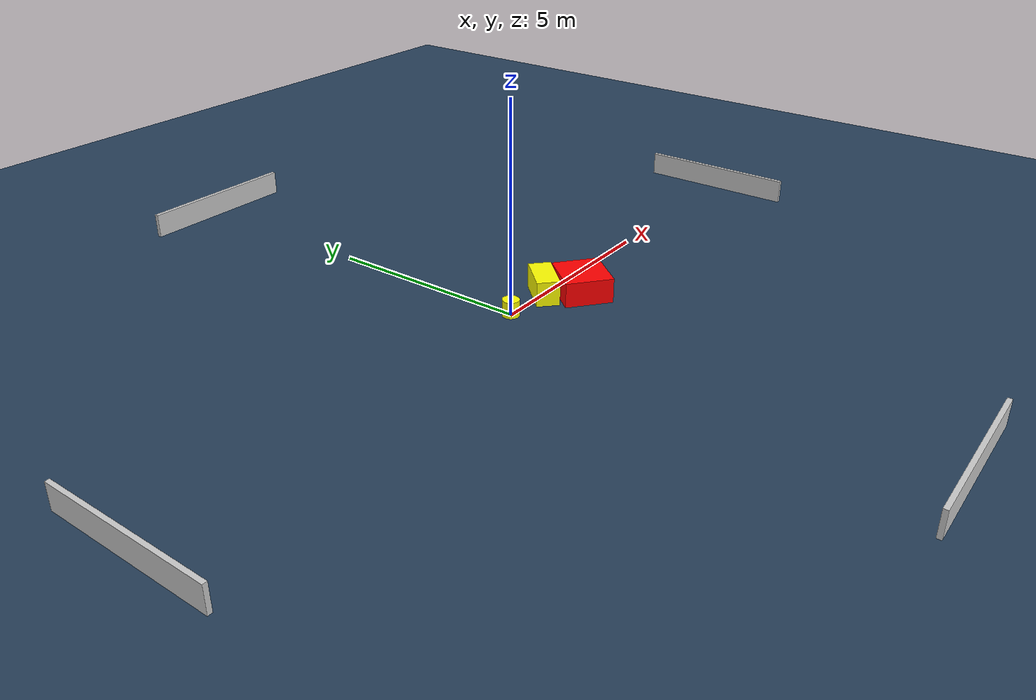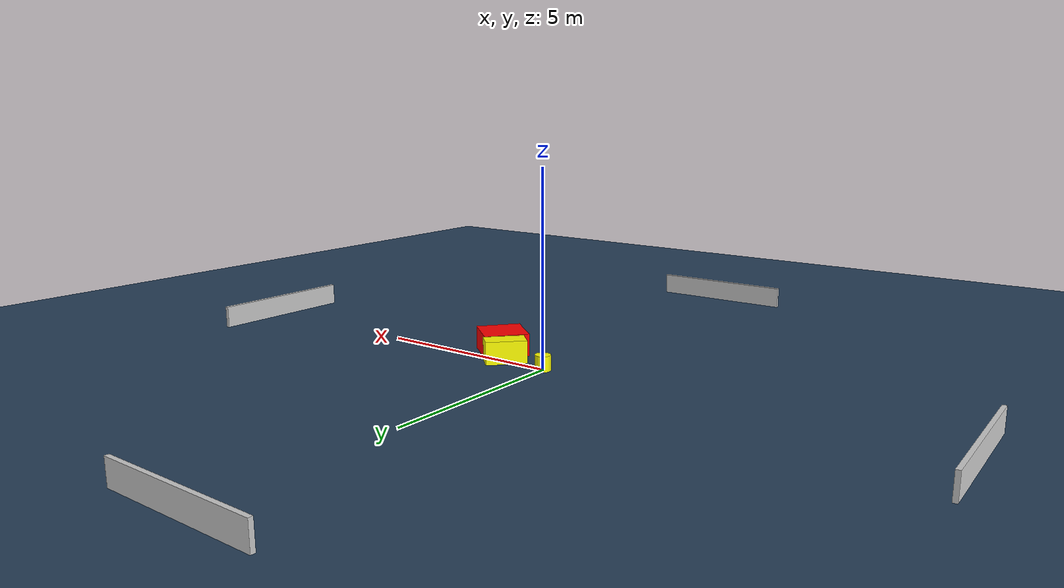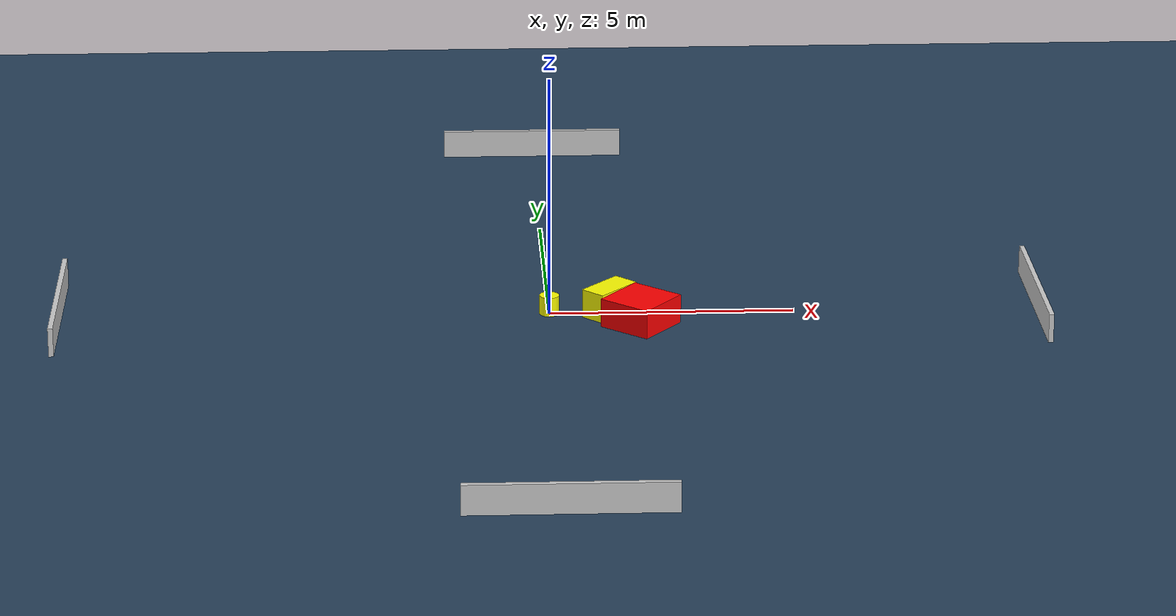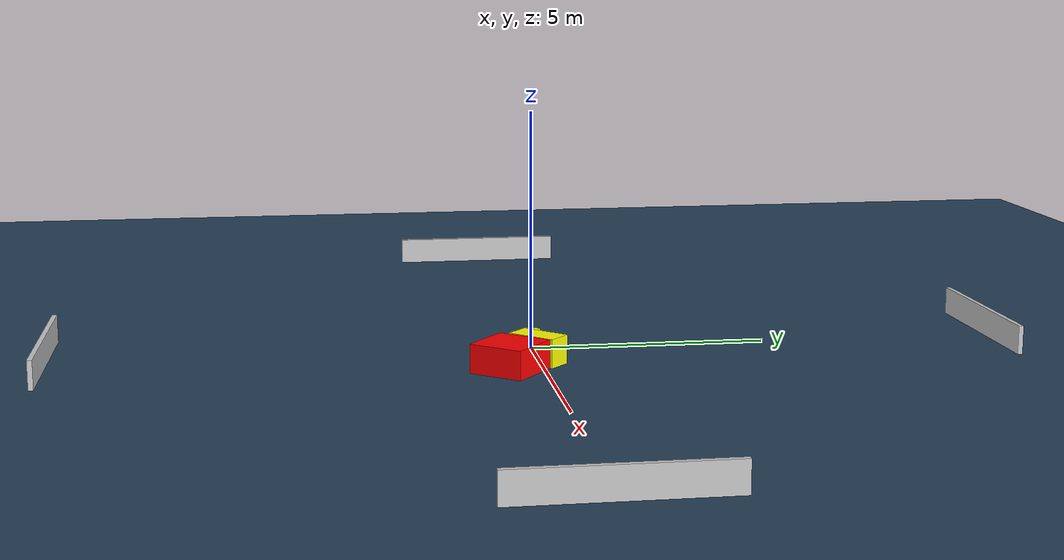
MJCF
<?xml version="1.0" ?>
<mujoco model="generated_environment">
  <option timestep="0.01" integrator="RK4" cone="elliptic"/>
  <default>
    <geom density="1"/>
  </default>
  <asset>
    <texture builtin="gradient" height="3072" name="skybox" rgb1="0.3 0.5 0.7" rgb2="0 0 0" type="skybox" width="512"/>
    <texture builtin="checker" height="300" name="groundplane" rgb1="0.2 0.3 0.4" rgb2="0.1 0.2 0.3" type="2d" width="300"/>
    <material name="groundplane" reflectance="0.2" texrepeat="5 5" texture="groundplane"/>
  </asset>
  <worldbody>
    <light dir="0 0 -1" directional="true" pos="0 0 1.5"/>
    <geom condim="3" friction="0.5 0.005 0.001" material="groundplane" name="floor" pos="0 0 0" size="0 0 0.05" type="plane"/>
    <body name="walls">
      <geom name="wall_1" condim="4" pos="-10.0 0.0 0.3" rgba="0.800000011920929 0.800000011920929 0.800000011920929 1.0" size="0.05 2.0 0.3" type="box"/>
      <geom name="wall_2" condim="4" pos="10.0 0.0 0.3" rgba="0.800000011920929 0.800000011920929 0.800000011920929 1.0" size="0.05 2.0 0.3" type="box"/>
      <geom name="wall_3" condim="4" pos="0.0 -10.0 0.3" rgba="0.800000011920929 0.800000011920929 0.800000011920929 1.0" size="2.0 0.05 0.3" type="box"/>
      <geom name="wall_4" condim="4" pos="0.0 10.0 0.3" rgba="0.800000011920929 0.800000011920929 0.800000011920929 1.0" size="2.0 0.05 0.3" type="box"/>
    </body>
    <body name="robot">
      <joint name="joint_x" type="slide" pos="0 0 0" axis="1 0 0"/>
      <joint name="joint_y" type="slide" pos="0 0 0" axis="0 1 0"/>
      <geom name="robot" type="cylinder" pos="0.0 0.0 0.2" size="0.2 0.2 0.0" mass="5.0" friction="1.0 0.005 0.0001" condim="4" rgba="1.0 1.0 0.0 1.0"/>
    </body>
    <body name="obstacle_1_movable">
      <geom name="obstacle_1_movable" condim="4" pos="1.2255698637737864 -0.03720149884765392 0.3" euler="0 0 226.52888200785557" friction="0.0 0.005 0.001" rgba="1.0 1.0 0.0 1.0" size="0.5309808449056366 0.2725490577784779 0.3" type="box" mass="0.1"/>
      <joint type="free"/>
    </body>
    <body name="obstacle_2_static">
      <geom name="obstacle_2_static" condim="4" pos="1.833853842637638 -0.6963963502146632 0.3" euler="0 0 320.66581211372284" friction="0.0 0.005 0.001" rgba="1.0 0.0 0.0 1.0" size="0.5720100439131891 0.5885389733807762 0.3" type="box"/>
    </body>
  </worldbody>
  <actuator>
    <motor name="actuator_x" joint="joint_x" gear="1" ctrlrange="-1 1"/>
    <motor name="actuator_y" joint="joint_y" gear="1" ctrlrange="-1 1"/>
  </actuator>
</mujoco>
